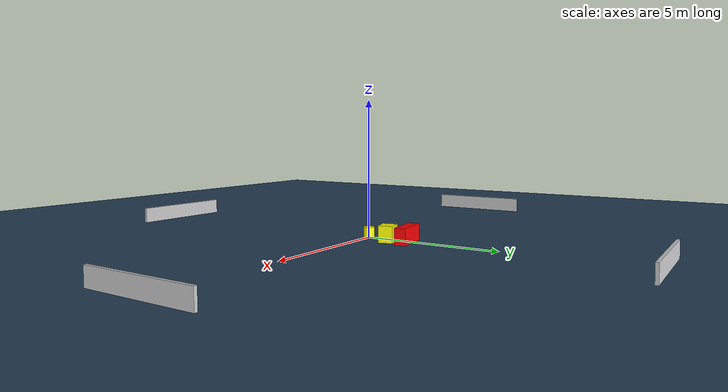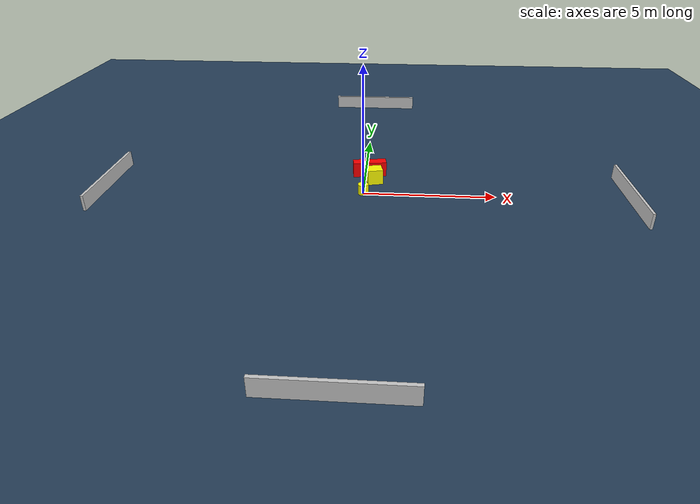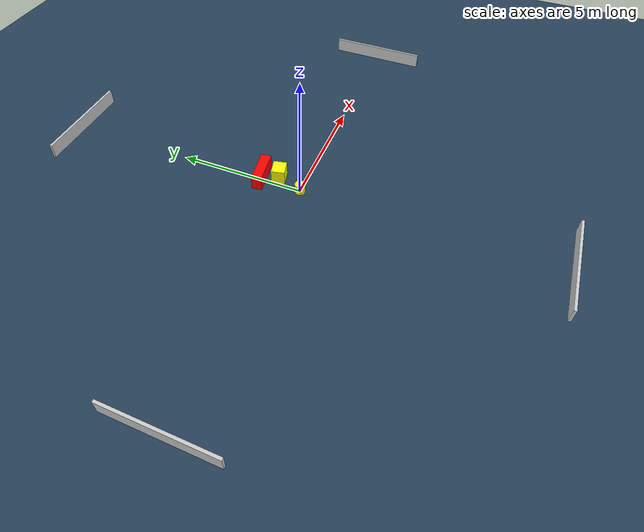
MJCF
<?xml version="1.0" ?>
<mujoco model="generated_environment">
  <option timestep="0.01" integrator="RK4" cone="elliptic"/>
  <default>
    <geom density="1"/>
  </default>
  <asset>
    <texture builtin="gradient" height="3072" name="skybox" rgb1="0.3 0.5 0.7" rgb2="0 0 0" type="skybox" width="512"/>
    <texture builtin="checker" height="300" name="groundplane" rgb1="0.2 0.3 0.4" rgb2="0.1 0.2 0.3" type="2d" width="300"/>
    <material name="groundplane" reflectance="0.2" texrepeat="5 5" texture="groundplane"/>
  </asset>
  <worldbody>
    <light dir="0 0 -1" directional="true" pos="0 0 1.5"/>
    <geom condim="3" friction="0.5 0.005 0.001" material="groundplane" name="floor" pos="0 0 0" size="0 0 0.05" type="plane"/>
    <body name="walls">
      <geom name="wall_1" condim="4" pos="-10.0 0.0 0.3" rgba="0.800000011920929 0.800000011920929 0.800000011920929 1.0" size="0.05 2.0 0.3" type="box"/>
      <geom name="wall_2" condim="4" pos="10.0 0.0 0.3" rgba="0.800000011920929 0.800000011920929 0.800000011920929 1.0" size="0.05 2.0 0.3" type="box"/>
      <geom name="wall_3" condim="4" pos="0.0 -10.0 0.3" rgba="0.800000011920929 0.800000011920929 0.800000011920929 1.0" size="2.0 0.05 0.3" type="box"/>
      <geom name="wall_4" condim="4" pos="0.0 10.0 0.3" rgba="0.800000011920929 0.800000011920929 0.800000011920929 1.0" size="2.0 0.05 0.3" type="box"/>
    </body>
    <body name="robot">
      <joint name="joint_x" type="slide" pos="0 0 0" axis="1 0 0"/>
      <joint name="joint_y" type="slide" pos="0 0 0" axis="0 1 0"/>
      <geom name="robot" type="cylinder" pos="0.0 0.0 0.2" size="0.2 0.2 0.0" mass="5.0" friction="1.0 0.005 0.0001" condim="4" rgba="1.0 1.0 0.0 1.0"/>
    </body>
    <body name="obstacle_1_movable">
      <geom name="obstacle_1_movable" condim="4" pos="0.37560468366925953 1.02950980014053 0.3" euler="0 0 102.74381202322401" friction="0.0 0.005 0.001" rgba="1.0 1.0 0.0 1.0" size="0.26418188587208946 0.3023107534866742 0.3" type="box" mass="0.1"/>
      <joint type="free"/>
    </body>
    <body name="obstacle_2_static">
      <geom name="obstacle_2_static" condim="4" pos="0.1548900184597806 1.6794591898918212 0.3" euler="0 0 277.48645524074846" friction="0.0 0.005 0.001" rgba="1.0 0.0 0.0 1.0" size="0.20073499376919277 0.6637547886844317 0.3" type="box"/>
    </body>
  </worldbody>
  <actuator>
    <motor name="actuator_x" joint="joint_x" gear="1" ctrlrange="-1 1"/>
    <motor name="actuator_y" joint="joint_y" gear="1" ctrlrange="-1 1"/>
  </actuator>
</mujoco>
